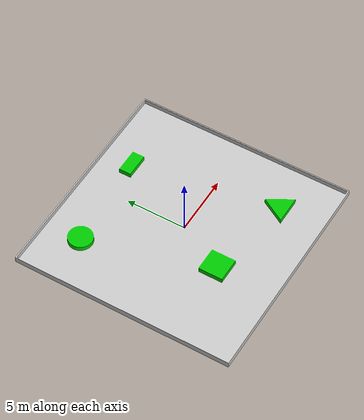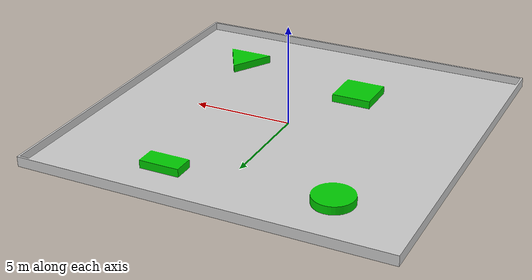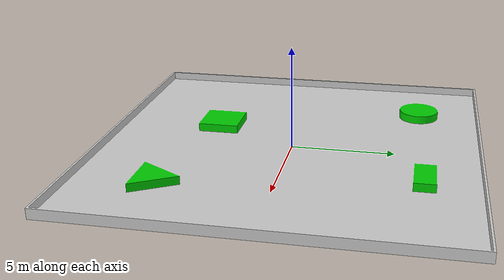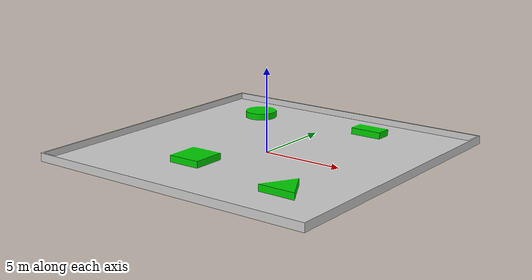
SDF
<?xml version="1.0" ?>
<sdf version="1.6">
  <model name="yolo_nav_stage">
    <static>true</static>
    <link name="link">
      <collision name="collision">
        <geometry>
          <mesh>
            <scale>1 1 1</scale>
            <uri>model://yolo_nav_stage/meshes/yolo_nav_stage.stl</uri>
          </mesh>
        </geometry>
        <surface>
          <friction>
            <ode>
              <mu>1.2</mu>
              <mu2>1.2</mu2>
            </ode>
          </friction>
        </surface>
      </collision>
      <visual name="visual">
        <geometry>
          <mesh>
            <scale>1 1 1</scale>
            <uri>model://yolo_nav_stage/meshes/yolo_nav_stage.dae</uri>
          </mesh>
        </geometry>
      </visual>
    </link>
  </model>
</sdf>
